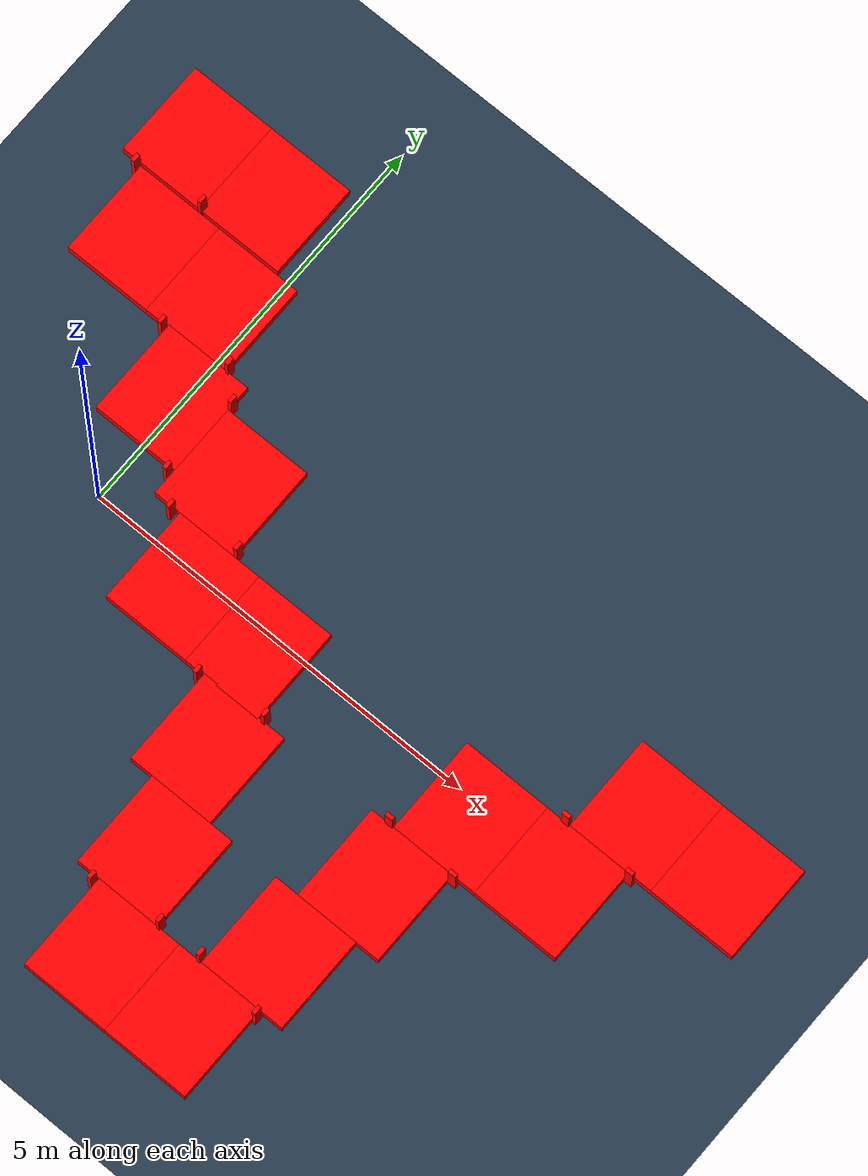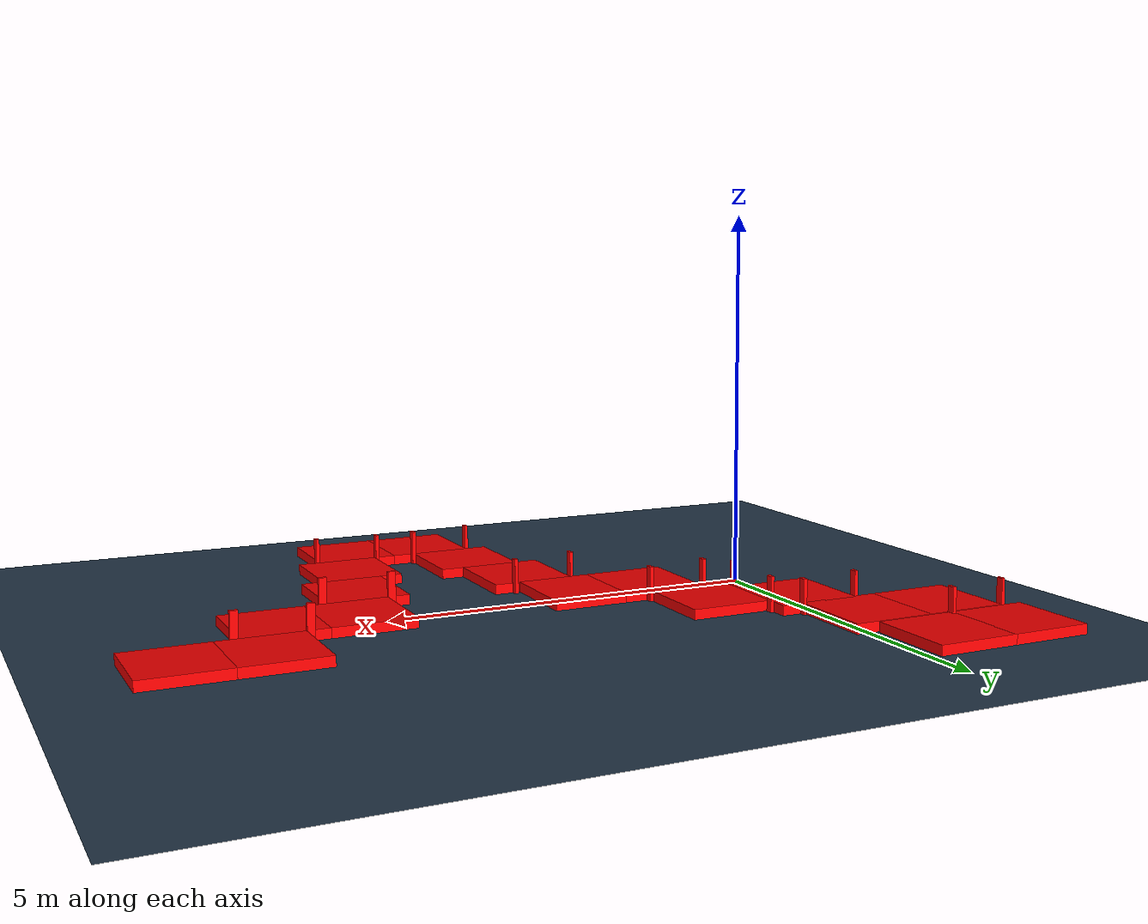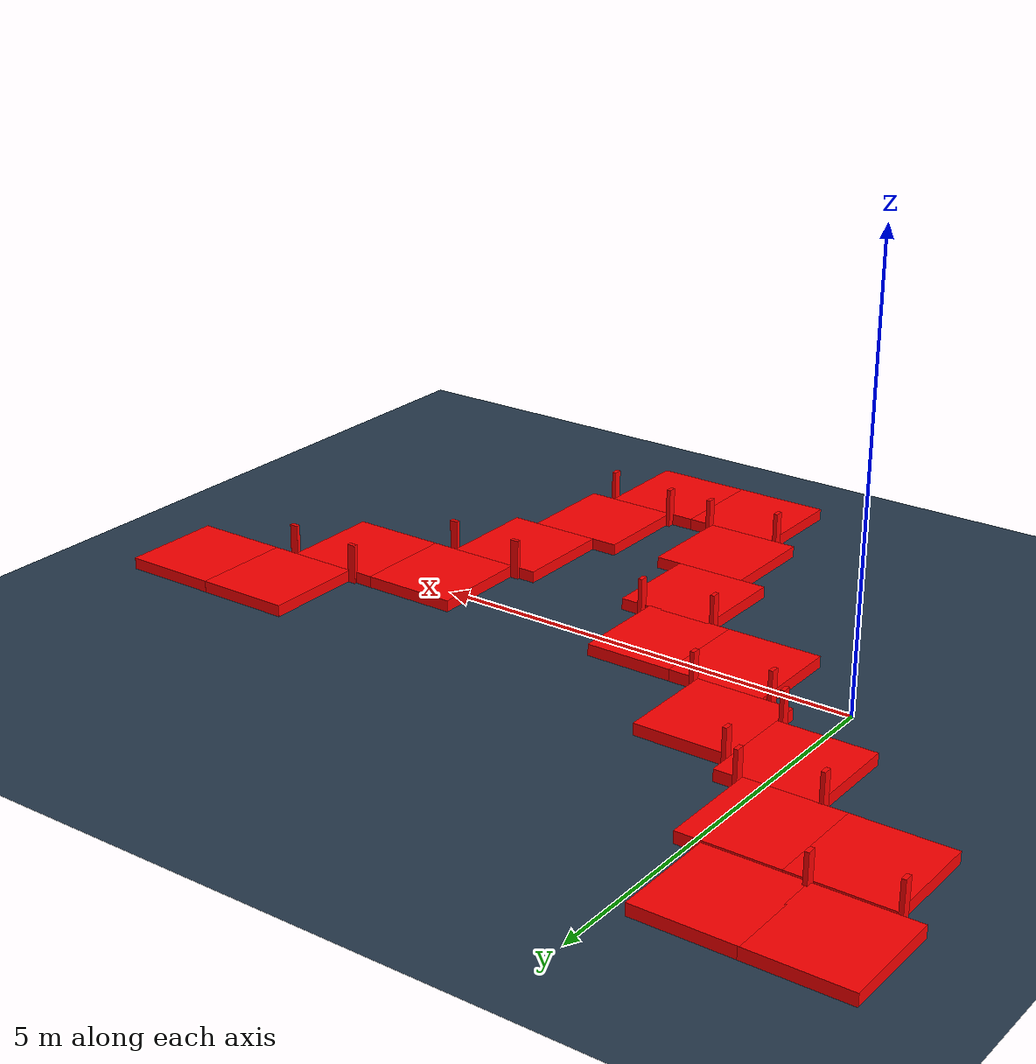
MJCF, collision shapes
<mujoco model="aesir_mapa_pallets">

  <asset>
    <texture name="texplane" type="2d" builtin="checker" rgb1=".2 .3 .4" rgb2=".1 0.15 0.2" width="512" height="512"/>
    <material name="matplane" reflectance="0.3" texture="texplane" texrepeat="4 4" texuniform="true"/>

    <mesh name="pallets_mesh" file="/home/aesir/aesir_rl/models/meshes/pallets/base_link.stl" scale="0.001 0.001 0.001"/>
  </asset>

  <worldbody>
    <light directional="true" pos="0 0 5" dir="0 0 -1"/>

    <geom name="muerte_suelo_penalizacion" type="plane" size="50 50 0.1" pos="0 0 0" material="matplane"/>

    <body name="pallets_mesh_body" pos="3 -3.49 0">
      <geom name="pallets_visual" type="mesh" mesh="pallets_mesh" contype="0" conaffinity="0" rgba="0.55 0.38 0.18 1"/>
      <geom name= "fatal_pallet 1" type="box" size=".55 0.6 .12" pos="-4.78 7.2 0" rgba="1 0 0 0.5"/>
      <geom name= "fatal_pallet 2" type="box" size=".55 0.6 .12" pos="-3.7 7.2 0" rgba="1 0 0 0.5"/>
      <geom name= "fatal_pallet 3" type="box" size=".55 0.6 .12" pos="-4.5 5.97 0" rgba="1 0 0 0.5"/>
      <geom name= "fatal_pallet 4" type="box" size=".55 0.6 .12" pos="-3.4 5.97 0" rgba="1 0 0 0.5"/>
      <geom name= "fatal_pallet 5" type="box" size=".55 0.6 .12" pos="-3.1 4.8 0" rgba="1 0 0 0.5"/>
      <geom name= "fatal_pallet 6" type="box" size=".55 0.6 .12" pos="-2 4.48 0" rgba="1 0 0 0.5"/>
      <geom name= "fatal_pallet 7" type="box" size=".55 0.6 .12" pos="-1.65 3.28 0" rgba="1 0 0 0.5"/>
      <geom name= "fatal_pallet 8" type="box" size=".5 0.6 .12" pos="-.6 3.28 0" rgba="1 0 0 0.5"/>
      <geom name= "fatal_pallet 9" type="box" size=".55 0.6 .12" pos="-.3 2.1 0" rgba="1 0 0 0.5"/>
      <geom name= "fatal_pallet 10" type="box" size=".55 0.6 .12" pos="0 .9 0" rgba="1 0 0 0.5"/>
      <geom name= "fatal_pallet 11" type="box" size=".55 0.6 .12" pos=".3 -.3 0" rgba="1 0 0 0.5"/>
      <geom name= "fatal_pallet 12" type="box" size=".55 0.6 .12" pos="1.4 -.3 0" rgba="1 0 0 0.5"/>
      <geom name= "fatal_pallet 13" type="box" size=".55 0.6 .12" pos="1.7 .9 0" rgba="1 0 0 0.5"/>
      <geom name= "fatal_pallet 14" type="box" size=".55 0.6 .12" pos="2.0 2.1 0" rgba="1 0 0 0.5"/>
      <geom name= "fatal_pallet 15" type="box" size=".55 0.6 .12" pos="2.3 3.3 0" rgba="1 0 0 0.5"/>
      <geom name= "fatal_pallet 16" type="box" size=".55 0.6 .12" pos="3.4 3.3 0" rgba="1 0 0 0.5"/>
      <geom name= "fatal_pallet 17" type="box" size=".55 0.6 .12" pos="3.7 4.5 0" rgba="1 0 0 0.5"/>
      <geom name= "fatal_pallet 18" type="box" size=".55 0.6 .12" pos="4.8 4.5 0" rgba="1 0 0 0.5"/>

      <geom name= "fatal_stick 1" type="box" size=".024 0.05 .45" pos="-5.075 6.528 0" rgba="1 0 0 0.5"/>
      <geom name= "fatal_stick 2" type="box" size=".024 0.05 .45" pos="-4.225 6.627 0" rgba="1 0 0 0.5"/>
      <geom name= "fatal_stick 3" type="box" size=".024 0.05 .45" pos="-3.675 5.328 0" rgba="1 0 0 0.5"/>
      <geom name= "fatal_stick 4" type="box" size=".024 0.05 .45" pos="-2.824 5.428 0" rgba="1 0 0 0.5"/>
      <geom name= "fatal_stick 5" type="box" size=".024 0.05 .45" pos="-2.525 5.13 0" rgba="1 0 0 0.5"/>
      <geom name= "fatal_stick 6" type="box" size=".024 0.05 .45" pos="-2.576 4.127 0" rgba="1 0 0 0.5"/>
      <geom name= "fatal_stick 7" type="box" size=".024 0.05 .45" pos="-2.275 3.827 0" rgba="1 0 0 0.5"/>
      <geom name= "fatal_stick 8" type="box" size=".024 0.05 .45" pos="-1.425 3.9276 0" rgba="1 0 0 0.5"/>
      <geom name= "fatal_stick 9" type="box" size=".024 0.05 .45" pos="-.876 2.63 0" rgba="1 0 0 0.5"/>
      <geom name= "fatal_stick 10" type="box" size=".024 0.05 .45" pos="-.024 2.724 0" rgba="1 0 0 0.5"/>
      <geom name= "fatal_stick 11" type="box" size=".024 0.05 .45" pos="-.276 .228 0" rgba="1 0 0 0.5"/>
      <geom name= "fatal_stick 12" type="box" size=".024 0.05 .45" pos=".572 .33 0" rgba="1 0 0 0.5"/>
      <geom name= "fatal_stick 13" type="box" size=".024 0.05 .45" pos="1.127 .33 0" rgba="1 0 0 0.5"/>
      <geom name= "fatal_stick 14" type="box" size=".024 0.05 .45" pos="1.975 .228 0" rgba="1 0 0 0.5"/>
      <geom name= "fatal_stick 15" type="box" size="0.05 .024 .45" pos="1.7 2.702 0" rgba="1 0 0 0.5"/>
      <geom name= "fatal_stick 16" type="box" size="0.05 .024 .45" pos="2.6 2.653 0" rgba="1 0 0 0.5"/>
      <geom name= "fatal_stick 17" type="box" size="0.05 .024 .45" pos="3.1 3.902 0" rgba="1 0 0 0.5"/>
      <geom name= "fatal_stick 18" type="box" size="0.05 .024 .45" pos="4 3.853 0" rgba="1 0 0 0.5"/>

    </body>

  </worldbody>
</mujoco>
